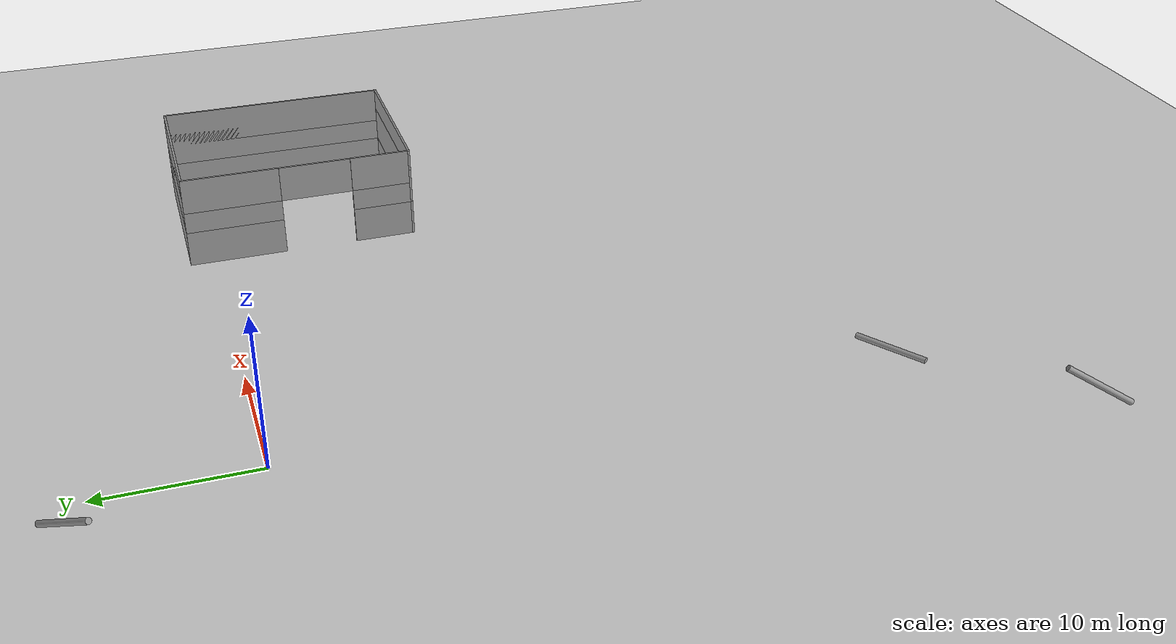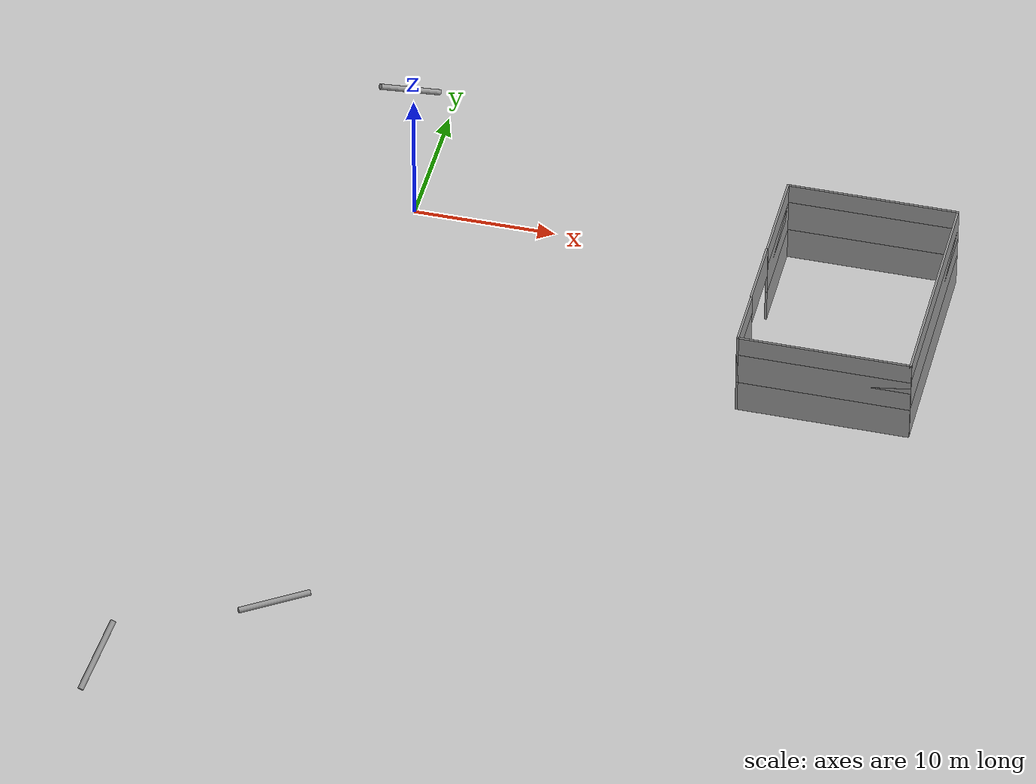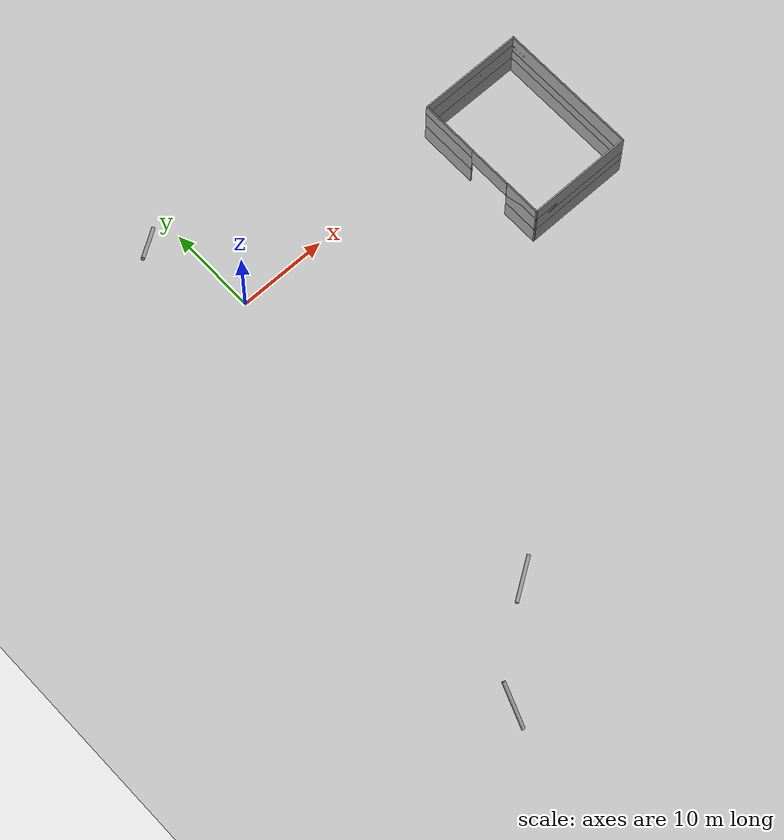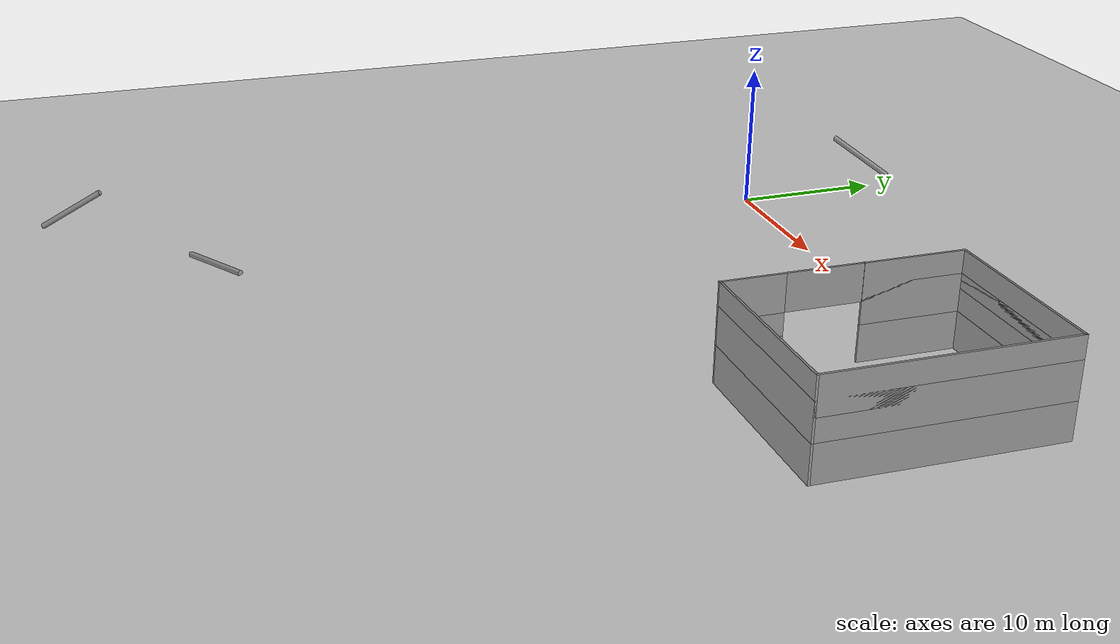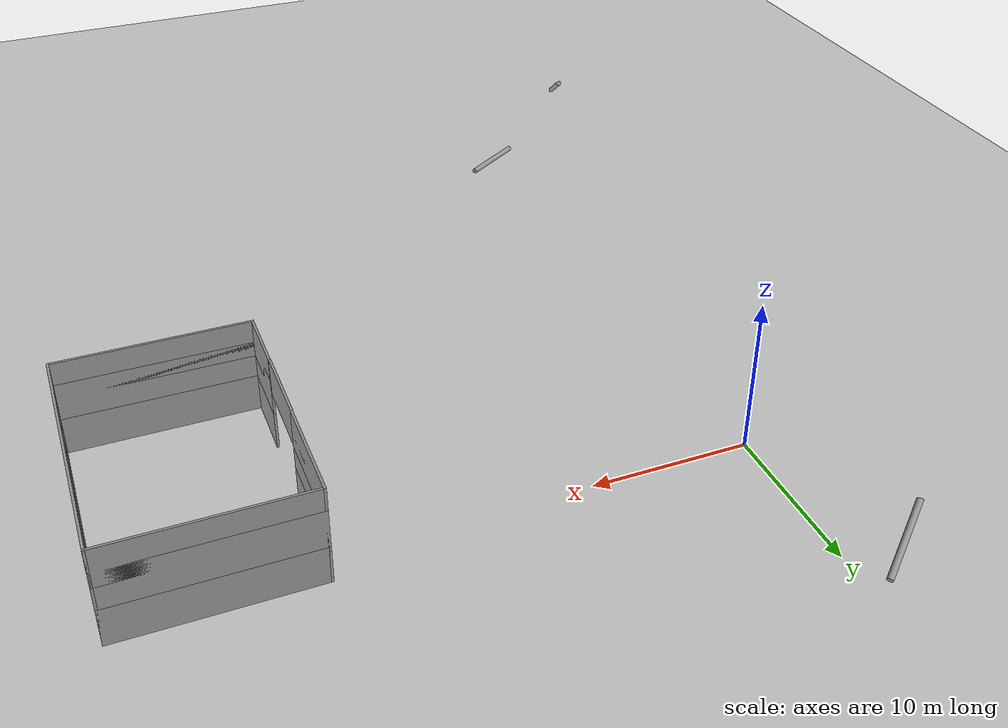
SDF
<sdf version="1.6">
 <world name="default">
  <light name="sun" type="directional">
   <pose>0 0 10 0 -0 0</pose>
   <diffuse>0.8 0.8 0.8 1</diffuse>
   <specular>0.2 0.2 0.2 1</specular>
   <attenuation>
    <range>1000</range>
    <constant>0.9</constant>
    <linear>0.01</linear>
    <quadratic>0.001</quadratic>
   </attenuation>
   <direction>-0.5 0.1 -0.9</direction>
  </light>
  <model name="ground_plane">
   <static>1</static>
   <link name="link">
    <collision name="collision">
     <geometry><plane><normal>0 0 1</normal><size>100 100</size></plane></geometry>
     <surface><friction><ode><mu>100</mu><mu2>50</mu2></ode></friction></surface>
    </collision>
    <visual name="visual">
     <cast_shadows>0</cast_shadows>
     <geometry><plane><normal>0 0 1</normal><size>100 100</size></plane></geometry>
     <material>
      <script><uri>file://media/materials/scripts/gazebo.material</uri><name>Gazebo/Grey</name></script>
     </material>
    </visual>
   </link>
  </model>
  <gravity>0 0 -9.8</gravity>
  <magnetic_field>6e-06 2.3e-05 -4.2e-05</magnetic_field>
  <atmosphere type="adiabatic"/>
  <physics name="default_physics" default="0" type="ode">
   <max_step_size>0.001</max_step_size>
   <real_time_factor>1</real_time_factor>
   <real_time_update_rate>1000</real_time_update_rate>
  </physics>
  <scene><ambient>0.4 0.4 0.4 1</ambient><background>0.7 0.7 0.7 1</background><shadows>1</shadows></scene>
  <audio><device>default</device></audio>
  <spherical_coordinates>
   <surface_model>EARTH_WGS84</surface_model>
   <latitude_deg>0</latitude_deg>
   <longitude_deg>0</longitude_deg>
   <elevation>0</elevation>
   <heading_deg>0</heading_deg>
  </spherical_coordinates>
  <model name="PaperTestTunnelHouse">
   <pose>31.9195 -6.3195 0 0 -0 0</pose>
   <link name="Wall_10">
    <collision name="Wall_10_Collision">
     <geometry><box><size>4.25 0.15 2.5</size></box></geometry>
     <pose>0 0 1.25 0 -0 0</pose>
    </collision>
    <visual name="Wall_10_Visual">
     <pose>0 0 1.25 0 -0 0</pose>
     <geometry><box><size>4.25 0.15 2.5</size></box></geometry>
     <material>
      <script><uri>file://media/materials/scripts/gazebo.material</uri><name>Gazebo/Grey</name></script>
      <ambient>1 1 1 1</ambient>
     </material>
     <meta><layer>0</layer></meta>
    </visual>
    <pose>-5.925 -5.875 0 0 -0 1.5708</pose>
   </link>
   <link name="Wall_6">
    <collision name="Wall_6_Collision">
     <geometry><box><size>6.75 0.15 2.5</size></box></geometry>
     <pose>0 0 1.25 0 -0 0</pose>
    </collision>
    <visual name="Wall_6_Visual">
     <pose>0 0 1.25 0 -0 0</pose>
     <geometry><box><size>6.75 0.15 2.5</size></box></geometry>
     <material>
      <script><uri>file://media/materials/scripts/gazebo.material</uri><name>Gazebo/Grey</name></script>
      <ambient>1 1 1 1</ambient>
     </material>
     <meta><layer>0</layer></meta>
    </visual>
    <pose>-5.925 4.625 0 0 -0 1.5708</pose>
   </link>
   <link name="Wall_7">
    <collision name="Wall_7_Collision">
     <geometry><box><size>12 0.15 2.5</size></box></geometry>
     <pose>0 0 1.25 0 -0 0</pose>
    </collision>
    <visual name="Wall_7_Visual">
     <pose>0 0 1.25 0 -0 0</pose>
     <geometry><box><size>12 0.15 2.5</size></box></geometry>
     <material>
      <script><uri>file://media/materials/scripts/gazebo.material</uri><name>Gazebo/Grey</name></script>
      <ambient>1 1 1 1</ambient>
     </material>
     <meta><layer>0</layer></meta>
    </visual>
    <pose>-0 7.925 0 0 -0 0</pose>
   </link>
   <link name="Wall_8">
    <collision name="Wall_8_Collision">
     <geometry><box><size>16 0.15 2.5</size></box></geometry>
     <pose>0 0 1.25 0 -0 0</pose>
    </collision>
    <visual name="Wall_8_Visual">
     <pose>0 0 1.25 0 -0 0</pose>
     <geometry><box><size>16 0.15 2.5</size></box></geometry>
     <material>
      <script><uri>file://media/materials/scripts/gazebo.material</uri><name>Gazebo/Grey</name></script>
      <ambient>1 1 1 1</ambient>
     </material>
     <meta><layer>0</layer></meta>
    </visual>
    <pose>5.925 0 0 0 -0 -1.5708</pose>
   </link>
   <link name="Wall_9">
    <collision name="Wall_9_Collision">
     <geometry><box><size>12 0.15 2.5</size></box></geometry>
     <pose>0 0 1.25 0 -0 0</pose>
    </collision>
    <visual name="Wall_9_Visual">
     <pose>0 0 1.25 0 -0 0</pose>
     <geometry><box><size>12 0.15 2.5</size></box></geometry>
     <material>
      <script><uri>file://media/materials/scripts/gazebo.material</uri><name>Gazebo/Grey</name></script>
      <ambient>1 1 1 1</ambient>
     </material>
     <meta><layer>0</layer></meta>
    </visual>
    <pose>-0 -7.925 0 0 -0 3.14159</pose>
   </link>
   <static>1</static>
  </model>
  <model name="PaperTestTunnelHouse_0">
   <pose>31.9195 -6.319 2.5 0 -0 0</pose>
   <link name="Wall_10">
    <collision name="Wall_10_Collision">
     <geometry><box><size>4.25 0.15 2.5</size></box></geometry>
     <pose>0 0 1.25 0 -0 0</pose>
    </collision>
    <visual name="Wall_10_Visual">
     <pose>0 0 1.25 0 -0 0</pose>
     <geometry><box><size>4.25 0.15 2.5</size></box></geometry>
     <material>
      <script><uri>file://media/materials/scripts/gazebo.material</uri><name>Gazebo/Grey</name></script>
      <ambient>1 1 1 1</ambient>
     </material>
     <meta><layer>0</layer></meta>
    </visual>
    <pose>-5.925 -5.875 0 0 -0 1.5708</pose>
   </link>
   <link name="Wall_6">
    <collision name="Wall_6_Collision">
     <geometry><box><size>6.75 0.15 2.5</size></box></geometry>
     <pose>0 0 1.25 0 -0 0</pose>
    </collision>
    <visual name="Wall_6_Visual">
     <pose>0 0 1.25 0 -0 0</pose>
     <geometry><box><size>6.75 0.15 2.5</size></box></geometry>
     <material>
      <script><uri>file://media/materials/scripts/gazebo.material</uri><name>Gazebo/Grey</name></script>
      <ambient>1 1 1 1</ambient>
     </material>
     <meta><layer>0</layer></meta>
    </visual>
    <pose>-5.925 4.625 0 0 -0 1.5708</pose>
   </link>
   <link name="Wall_7">
    <collision name="Wall_7_Collision">
     <geometry><box><size>12 0.15 2.5</size></box></geometry>
     <pose>0 0 1.25 0 -0 0</pose>
    </collision>
    <visual name="Wall_7_Visual">
     <pose>0 0 1.25 0 -0 0</pose>
     <geometry><box><size>12 0.15 2.5</size></box></geometry>
     <material>
      <script><uri>file://media/materials/scripts/gazebo.material</uri><name>Gazebo/Grey</name></script>
      <ambient>1 1 1 1</ambient>
     </material>
     <meta><layer>0</layer></meta>
    </visual>
    <pose>-0 7.925 0 0 -0 0</pose>
   </link>
   <link name="Wall_8">
    <collision name="Wall_8_Collision">
     <geometry><box><size>16 0.15 2.5</size></box></geometry>
     <pose>0 0 1.25 0 -0 0</pose>
    </collision>
    <visual name="Wall_8_Visual">
     <pose>0 0 1.25 0 -0 0</pose>
     <geometry><box><size>16 0.15 2.5</size></box></geometry>
     <material>
      <script><uri>file://media/materials/scripts/gazebo.material</uri><name>Gazebo/Grey</name></script>
      <ambient>1 1 1 1</ambient>
     </material>
     <meta><layer>0</layer></meta>
    </visual>
    <pose>5.925 0 0 0 -0 -1.5708</pose>
   </link>
   <link name="Wall_9">
    <collision name="Wall_9_Collision">
     <geometry><box><size>12 0.15 2.5</size></box></geometry>
     <pose>0 0 1.25 0 -0 0</pose>
    </collision>
    <visual name="Wall_9_Visual">
     <pose>0 0 1.25 0 -0 0</pose>
     <geometry><box><size>12 0.15 2.5</size></box></geometry>
     <material>
      <script><uri>file://media/materials/scripts/gazebo.material</uri><name>Gazebo/Grey</name></script>
      <ambient>1 1 1 1</ambient>
     </material>
     <meta><layer>0</layer></meta>
    </visual>
    <pose>-0 -7.925 0 0 -0 3.14159</pose>
   </link>
   <static>1</static>
  </model>
  <model name="5mWall">
   <pose>25.971 -7.56033 4 0 -0 0</pose>
   <link name="Wall_0">
    <collision name="Wall_0_Collision">
     <geometry><box><size>5 0.15 2.5</size></box></geometry>
     <pose>0 0 1.25 0 -0 0</pose>
    </collision>
    <visual name="Wall_0_Visual">
     <pose>0 0 1.25 0 -0 0</pose>
     <geometry><box><size>5 0.15 2.5</size></box></geometry>
     <material>
      <script><uri>file://media/materials/scripts/gazebo.material</uri><name>Gazebo/Grey</name></script>
      <ambient>1 1 1 1</ambient>
     </material>
     <meta><layer>0</layer></meta>
    </visual>
    <pose>0 -0 0 0 -0 1.5708</pose>
   </link>
   <static>1</static>
  </model>
  <model name="PaperTestTunnelHouse_1">
   <pose>31.9195 -6.319 4 0 -0 0</pose>
   <link name="Wall_10">
    <collision name="Wall_10_Collision">
     <geometry><box><size>4.25 0.15 2.5</size></box></geometry>
     <pose>0 0 1.25 0 -0 0</pose>
    </collision>
    <visual name="Wall_10_Visual">
     <pose>0 0 1.25 0 -0 0</pose>
     <geometry><box><size>4.25 0.15 2.5</size></box></geometry>
     <material>
      <script><uri>file://media/materials/scripts/gazebo.material</uri><name>Gazebo/Grey</name></script>
      <ambient>1 1 1 1</ambient>
     </material>
     <meta><layer>0</layer></meta>
    </visual>
    <pose>-5.925 -5.875 0 0 -0 1.5708</pose>
   </link>
   <link name="Wall_6">
    <collision name="Wall_6_Collision">
     <geometry><box><size>6.75 0.15 2.5</size></box></geometry>
     <pose>0 0 1.25 0 -0 0</pose>
    </collision>
    <visual name="Wall_6_Visual">
     <pose>0 0 1.25 0 -0 0</pose>
     <geometry><box><size>6.75 0.15 2.5</size></box></geometry>
     <material>
      <script><uri>file://media/materials/scripts/gazebo.material</uri><name>Gazebo/Grey</name></script>
      <ambient>1 1 1 1</ambient>
     </material>
     <meta><layer>0</layer></meta>
    </visual>
    <pose>-5.925 4.625 0 0 -0 1.5708</pose>
   </link>
   <link name="Wall_7">
    <collision name="Wall_7_Collision">
     <geometry><box><size>12 0.15 2.5</size></box></geometry>
     <pose>0 0 1.25 0 -0 0</pose>
    </collision>
    <visual name="Wall_7_Visual">
     <pose>0 0 1.25 0 -0 0</pose>
     <geometry><box><size>12 0.15 2.5</size></box></geometry>
     <material>
      <script><uri>file://media/materials/scripts/gazebo.material</uri><name>Gazebo/Grey</name></script>
      <ambient>1 1 1 1</ambient>
     </material>
     <meta><layer>0</layer></meta>
    </visual>
    <pose>-0 7.925 0 0 -0 0</pose>
   </link>
   <link name="Wall_8">
    <collision name="Wall_8_Collision">
     <geometry><box><size>16 0.15 2.5</size></box></geometry>
     <pose>0 0 1.25 0 -0 0</pose>
    </collision>
    <visual name="Wall_8_Visual">
     <pose>0 0 1.25 0 -0 0</pose>
     <geometry><box><size>16 0.15 2.5</size></box></geometry>
     <material>
      <script><uri>file://media/materials/scripts/gazebo.material</uri><name>Gazebo/Grey</name></script>
      <ambient>1 1 1 1</ambient>
     </material>
     <meta><layer>0</layer></meta>
    </visual>
    <pose>5.925 0 0 0 -0 -1.5708</pose>
   </link>
   <link name="Wall_9">
    <collision name="Wall_9_Collision">
     <geometry><box><size>12 0.15 2.5</size></box></geometry>
     <pose>0 0 1.25 0 -0 0</pose>
    </collision>
    <visual name="Wall_9_Visual">
     <pose>0 0 1.25 0 -0 0</pose>
     <geometry><box><size>12 0.15 2.5</size></box></geometry>
     <material>
      <script><uri>file://media/materials/scripts/gazebo.material</uri><name>Gazebo/Grey</name></script>
      <ambient>1 1 1 1</ambient>
     </material>
     <meta><layer>0</layer></meta>
    </visual>
    <pose>-0 -7.925 0 0 -0 3.14159</pose>
   </link>
   <static>1</static>
  </model>
  <model name="empty_pillar">
   <link name="link">
    <inertial>
     <mass>1</mass>
     <inertia><ixx>0.145833</ixx><ixy>0</ixy><ixz>0</ixz><iyy>0.145833</iyy><iyz>0</iyz><izz>0.125</izz></inertia>
    </inertial>
    <visual name="visual">
     <geometry><cylinder><radius>0.2</radius><length>5</length></cylinder></geometry>
     <material>
      <script><name>Gazebo/Grey</name><uri>file://media/materials/scripts/gazebo.material</uri></script>
      <shader type="vertex"><normal_map>__default__</normal_map></shader>
      <ambient>0.3 0.3 0.3 1</ambient>
      <diffuse>0.7 0.7 0.7 1</diffuse>
      <specular>0.01 0.01 0.01 1</specular>
      <emissive>0 0 0 1</emissive>
     </material>
    </visual>
    <collision name="collision">
     <geometry><cylinder><radius>0.05</radius><length>5</length></cylinder></geometry>
     <surface>
      <friction>
       <ode><mu>1</mu><mu2>1</mu2><fdir1>0 0 0</fdir1><slip1>0</slip1><slip2>0</slip2></ode>
       <torsional>
        <coefficient>1</coefficient>
        <patch_radius>0</patch_radius>
        <surface_radius>0</surface_radius>
        <use_patch_radius>1</use_patch_radius>
        <ode><slip>0</slip></ode>
       </torsional>
      </friction>
      <bounce><restitution_coefficient>0</restitution_coefficient><threshold>1e+06</threshold></bounce>
      <contact>
       <collide_without_contact>0</collide_without_contact>
       <collide_without_contact_bitmask>1</collide_without_contact_bitmask>
       <collide_bitmask>1</collide_bitmask>
       <ode>
        <soft_cfm>0</soft_cfm>
        <soft_erp>0.2</soft_erp>
        <kp>1e+13</kp>
        <kd>1</kd>
        <max_vel>0.01</max_vel>
        <min_depth>0</min_depth>
       </ode>
       <bullet>
        <split_impulse>1</split_impulse>
        <split_impulse_penetration_threshold>-0.01</split_impulse_penetration_threshold>
        <soft_cfm>0</soft_cfm>
        <soft_erp>0.2</soft_erp>
        <kp>1e+13</kp>
        <kd>1</kd>
       </bullet>
      </contact>
     </surface>
    </collision>
   </link>
   <static>0</static>
   <pose>-3.10422 11.096 1.19855 -1.0607 -0.497815 1.96981</pose>
  </model>
  <model name="empty_pillar_1">
   <link name="link">
    <inertial>
     <mass>1</mass>
     <inertia><ixx>0.145833</ixx><ixy>0</ixy><ixz>0</ixz><iyy>0.145833</iyy><iyz>0</iyz><izz>0.125</izz></inertia>
    </inertial>
    <visual name="visual">
     <geometry><cylinder><radius>0.2</radius><length>5</length></cylinder></geometry>
     <material>
      <script><name>Gazebo/Grey</name><uri>file://media/materials/scripts/gazebo.material</uri></script>
      <shader type="vertex"><normal_map>__default__</normal_map></shader>
      <ambient>0.3 0.3 0.3 1</ambient>
      <diffuse>0.7 0.7 0.7 1</diffuse>
      <specular>0.01 0.01 0.01 1</specular>
      <emissive>0 0 0 1</emissive>
     </material>
    </visual>
    <collision name="collision">
     <geometry><cylinder><radius>0.05</radius><length>5</length></cylinder></geometry>
     <surface>
      <friction>
       <ode><mu>1</mu><mu2>1</mu2><fdir1>0 0 0</fdir1><slip1>0</slip1><slip2>0</slip2></ode>
       <torsional>
        <coefficient>1</coefficient>
        <patch_radius>0</patch_radius>
        <surface_radius>0</surface_radius>
        <use_patch_radius>1</use_patch_radius>
        <ode><slip>0</slip></ode>
       </torsional>
      </friction>
      <bounce><restitution_coefficient>0</restitution_coefficient><threshold>1e+06</threshold></bounce>
      <contact>
       <collide_without_contact>0</collide_without_contact>
       <collide_without_contact_bitmask>1</collide_without_contact_bitmask>
       <collide_bitmask>1</collide_bitmask>
       <ode>
        <soft_cfm>0</soft_cfm>
        <soft_erp>0.2</soft_erp>
        <kp>1e+13</kp>
        <kd>1</kd>
        <max_vel>0.01</max_vel>
        <min_depth>0</min_depth>
       </ode>
       <bullet>
        <split_impulse>1</split_impulse>
        <split_impulse_penetration_threshold>-0.01</split_impulse_penetration_threshold>
        <soft_cfm>0</soft_cfm>
        <soft_erp>0.2</soft_erp>
        <kp>1e+13</kp>
        <kd>1</kd>
       </bullet>
      </contact>
     </surface>
    </collision>
   </link>
   <static>0</static>
   <pose>0.370372 -39.6313 0.050013 -1.57081 0.639015 2.15133</pose>
  </model>
  <model name="empty_pillar_2">
   <link name="link">
    <inertial>
     <mass>1</mass>
     <inertia><ixx>0.145833</ixx><ixy>0</ixy><ixz>0</ixz><iyy>0.145833</iyy><iyz>0</iyz><izz>0.125</izz></inertia>
    </inertial>
    <visual name="visual">
     <geometry><cylinder><radius>0.2</radius><length>5</length></cylinder></geometry>
     <material>
      <script><name>Gazebo/Grey</name><uri>file://media/materials/scripts/gazebo.material</uri></script>
      <shader type="vertex"><normal_map>__default__</normal_map></shader>
      <ambient>0.3 0.3 0.3 1</ambient>
      <diffuse>0.7 0.7 0.7 1</diffuse>
      <specular>0.01 0.01 0.01 1</specular>
      <emissive>0 0 0 1</emissive>
     </material>
    </visual>
    <collision name="collision">
     <geometry><cylinder><radius>0.05</radius><length>5</length></cylinder></geometry>
     <surface>
      <friction>
       <ode><mu>1</mu><mu2>1</mu2><fdir1>0 0 0</fdir1><slip1>0</slip1><slip2>0</slip2></ode>
       <torsional>
        <coefficient>1</coefficient>
        <patch_radius>0</patch_radius>
        <surface_radius>0</surface_radius>
        <use_patch_radius>1</use_patch_radius>
        <ode><slip>0</slip></ode>
       </torsional>
      </friction>
      <bounce><restitution_coefficient>0</restitution_coefficient><threshold>1e+06</threshold></bounce>
      <contact>
       <collide_without_contact>0</collide_without_contact>
       <collide_without_contact_bitmask>1</collide_without_contact_bitmask>
       <collide_bitmask>1</collide_bitmask>
       <ode>
        <soft_cfm>0</soft_cfm>
        <soft_erp>0.2</soft_erp>
        <kp>1e+13</kp>
        <kd>1</kd>
        <max_vel>0.01</max_vel>
        <min_depth>0</min_depth>
       </ode>
       <bullet>
        <split_impulse>1</split_impulse>
        <split_impulse_penetration_threshold>-0.01</split_impulse_penetration_threshold>
        <soft_cfm>0</soft_cfm>
        <soft_erp>0.2</soft_erp>
        <kp>1e+13</kp>
        <kd>1</kd>
       </bullet>
      </contact>
     </surface>
    </collision>
   </link>
   <static>0</static>
   <pose>-9.27458 -48.4495 1.32778 -0.9328 -0.529726 -0.635696</pose>
  </model>
 </world>
</sdf>
